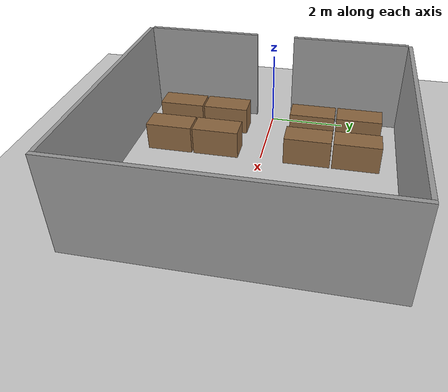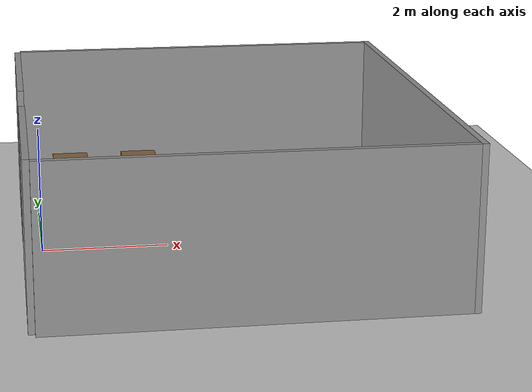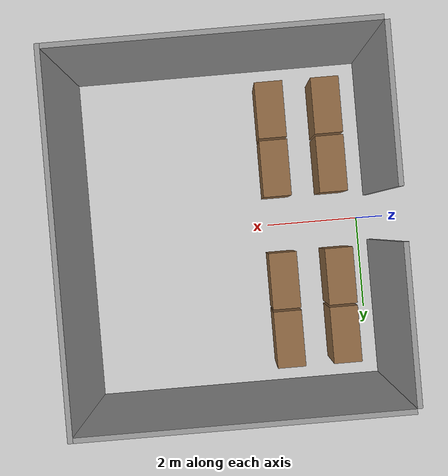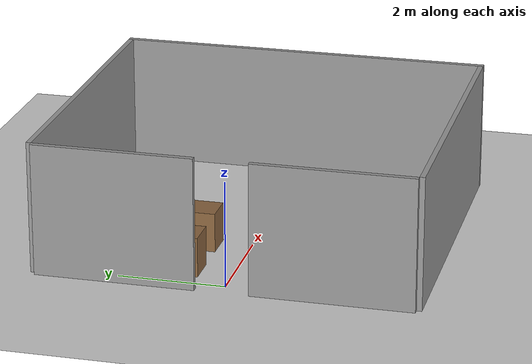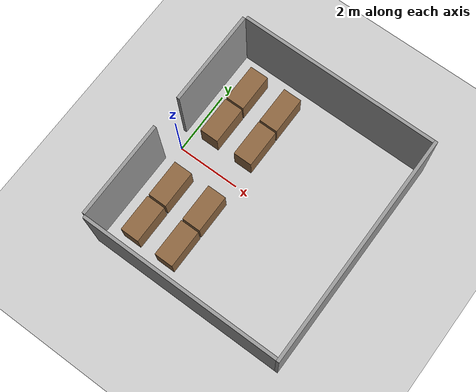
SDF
<?xml version="1.0"?>
<!-- generated by sim/worlds/make_worlds.py; edit its flags, not this file -->
<sdf version="1.6">
  <!-- classroom. The world must be called "default": the Velodyne plugin
       listens for scans under /gazebo/default/... whatever the world's name. -->
  <world name="default">
    <include><uri>model://sun</uri></include>
    <include><uri>model://ground_plane</uri></include>
    <physics type="ode"><real_time_update_rate>1000</real_time_update_rate>
      <max_step_size>0.001</max_step_size></physics>
    <model name="wall_far"><static>true</static>
      <pose>6.050 0.000 1.250 0 0 0</pose>
      <link name="link">
        <collision name="c"><geometry><box><size>0.100 7.200 2.500</size></box></geometry></collision>
        <visual name="v"><geometry><box><size>0.100 7.200 2.500</size></box></geometry>
          <material><ambient>0.6 0.6 0.6 1</ambient><diffuse>0.6 0.6 0.6 1</diffuse></material></visual>
      </link></model>
    <model name="wall_left"><static>true</static>
      <pose>2.900 3.550 1.250 0 0 0</pose>
      <link name="link">
        <collision name="c"><geometry><box><size>6.200 0.100 2.500</size></box></geometry></collision>
        <visual name="v"><geometry><box><size>6.200 0.100 2.500</size></box></geometry>
          <material><ambient>0.6 0.6 0.6 1</ambient><diffuse>0.6 0.6 0.6 1</diffuse></material></visual>
      </link></model>
    <model name="wall_right"><static>true</static>
      <pose>2.900 -3.550 1.250 0 0 0</pose>
      <link name="link">
        <collision name="c"><geometry><box><size>6.200 0.100 2.500</size></box></geometry></collision>
        <visual name="v"><geometry><box><size>6.200 0.100 2.500</size></box></geometry>
          <material><ambient>0.6 0.6 0.6 1</ambient><diffuse>0.6 0.6 0.6 1</diffuse></material></visual>
      </link></model>
    <model name="wall_near_r"><static>true</static>
      <pose>-0.250 -2.000 1.250 0 0 0</pose>
      <link name="link">
        <collision name="c"><geometry><box><size>0.100 3.000 2.500</size></box></geometry></collision>
        <visual name="v"><geometry><box><size>0.100 3.000 2.500</size></box></geometry>
          <material><ambient>0.6 0.6 0.6 1</ambient><diffuse>0.6 0.6 0.6 1</diffuse></material></visual>
      </link></model>
    <model name="wall_near_l"><static>true</static>
      <pose>-0.250 2.000 1.250 0 0 0</pose>
      <link name="link">
        <collision name="c"><geometry><box><size>0.100 3.000 2.500</size></box></geometry></collision>
        <visual name="v"><geometry><box><size>0.100 3.000 2.500</size></box></geometry>
          <material><ambient>0.6 0.6 0.6 1</ambient><diffuse>0.6 0.6 0.6 1</diffuse></material></visual>
      </link></model>
    <model name="desk_0"><static>true</static>
      <pose>0.600 1.200 0.375 0 0 0</pose>
      <link name="link">
        <collision name="c"><geometry><box><size>0.600 1.200 0.750</size></box></geometry></collision>
        <visual name="v"><geometry><box><size>0.600 1.200 0.750</size></box></geometry>
          <material><ambient>0.55 0.4 0.25 1</ambient><diffuse>0.55 0.4 0.25 1</diffuse></material></visual>
      </link></model>
    <model name="desk_1"><static>true</static>
      <pose>0.600 2.450 0.375 0 0 0</pose>
      <link name="link">
        <collision name="c"><geometry><box><size>0.600 1.200 0.750</size></box></geometry></collision>
        <visual name="v"><geometry><box><size>0.600 1.200 0.750</size></box></geometry>
          <material><ambient>0.55 0.4 0.25 1</ambient><diffuse>0.55 0.4 0.25 1</diffuse></material></visual>
      </link></model>
    <model name="desk_2"><static>true</static>
      <pose>0.600 -1.200 0.375 0 0 0</pose>
      <link name="link">
        <collision name="c"><geometry><box><size>0.600 1.200 0.750</size></box></geometry></collision>
        <visual name="v"><geometry><box><size>0.600 1.200 0.750</size></box></geometry>
          <material><ambient>0.55 0.4 0.25 1</ambient><diffuse>0.55 0.4 0.25 1</diffuse></material></visual>
      </link></model>
    <model name="desk_3"><static>true</static>
      <pose>0.600 -2.450 0.375 0 0 0</pose>
      <link name="link">
        <collision name="c"><geometry><box><size>0.600 1.200 0.750</size></box></geometry></collision>
        <visual name="v"><geometry><box><size>0.600 1.200 0.750</size></box></geometry>
          <material><ambient>0.55 0.4 0.25 1</ambient><diffuse>0.55 0.4 0.25 1</diffuse></material></visual>
      </link></model>
    <model name="desk_4"><static>true</static>
      <pose>1.800 1.200 0.375 0 0 0</pose>
      <link name="link">
        <collision name="c"><geometry><box><size>0.600 1.200 0.750</size></box></geometry></collision>
        <visual name="v"><geometry><box><size>0.600 1.200 0.750</size></box></geometry>
          <material><ambient>0.55 0.4 0.25 1</ambient><diffuse>0.55 0.4 0.25 1</diffuse></material></visual>
      </link></model>
    <model name="desk_5"><static>true</static>
      <pose>1.800 2.450 0.375 0 0 0</pose>
      <link name="link">
        <collision name="c"><geometry><box><size>0.600 1.200 0.750</size></box></geometry></collision>
        <visual name="v"><geometry><box><size>0.600 1.200 0.750</size></box></geometry>
          <material><ambient>0.55 0.4 0.25 1</ambient><diffuse>0.55 0.4 0.25 1</diffuse></material></visual>
      </link></model>
    <model name="desk_6"><static>true</static>
      <pose>1.800 -1.200 0.375 0 0 0</pose>
      <link name="link">
        <collision name="c"><geometry><box><size>0.600 1.200 0.750</size></box></geometry></collision>
        <visual name="v"><geometry><box><size>0.600 1.200 0.750</size></box></geometry>
          <material><ambient>0.55 0.4 0.25 1</ambient><diffuse>0.55 0.4 0.25 1</diffuse></material></visual>
      </link></model>
    <model name="desk_7"><static>true</static>
      <pose>1.800 -2.450 0.375 0 0 0</pose>
      <link name="link">
        <collision name="c"><geometry><box><size>0.600 1.200 0.750</size></box></geometry></collision>
        <visual name="v"><geometry><box><size>0.600 1.200 0.750</size></box></geometry>
          <material><ambient>0.55 0.4 0.25 1</ambient><diffuse>0.55 0.4 0.25 1</diffuse></material></visual>
      </link></model>
  </world>
</sdf>
